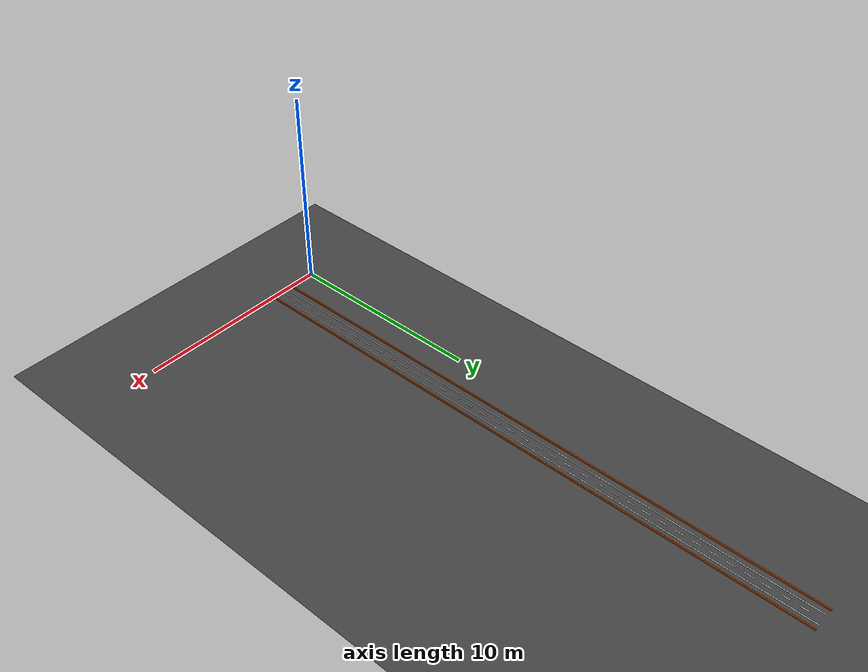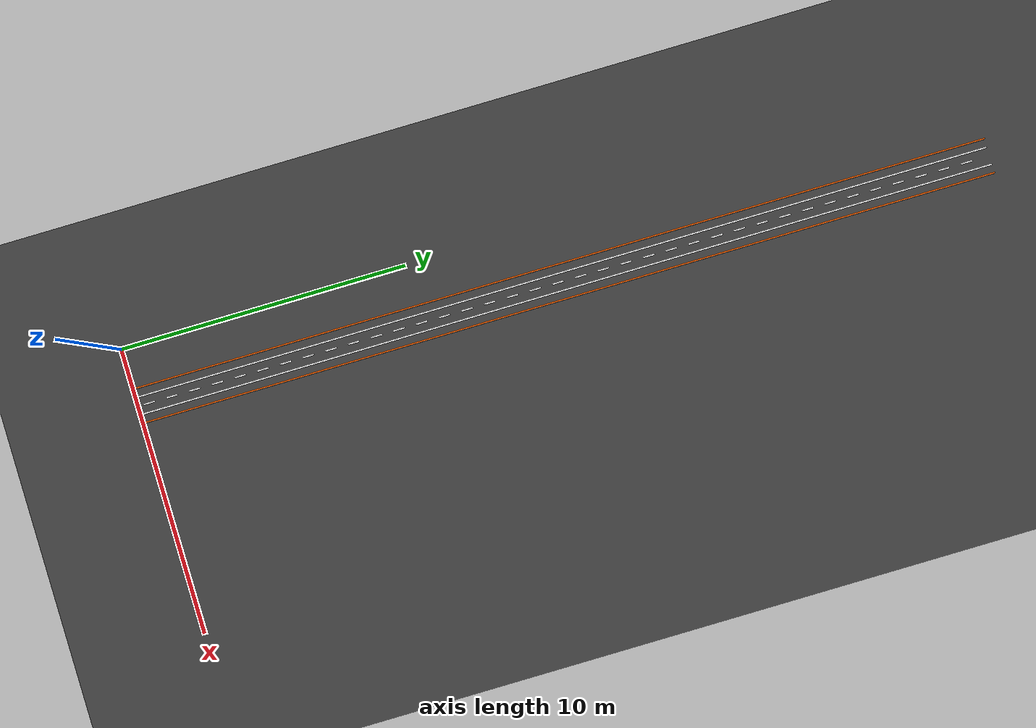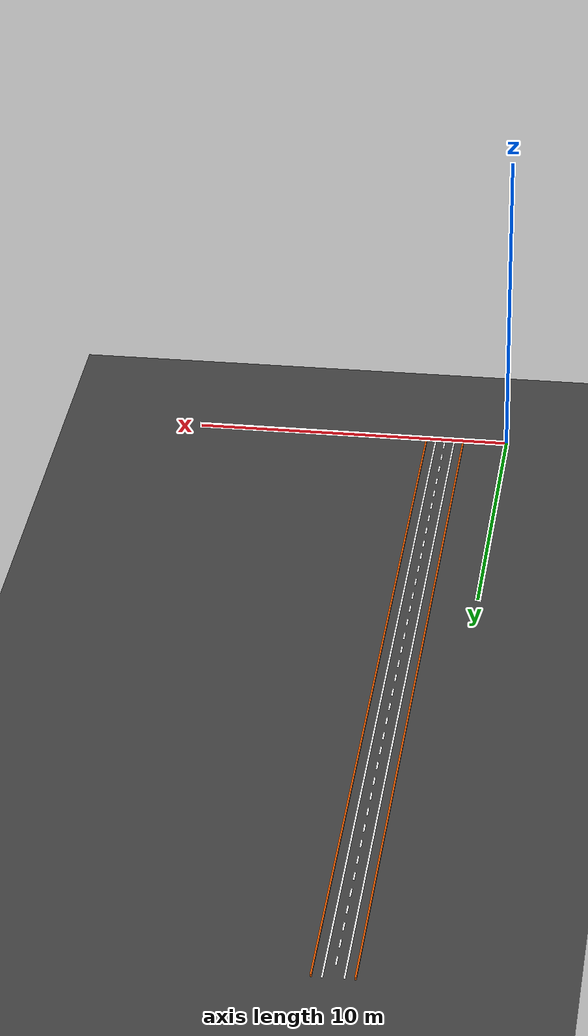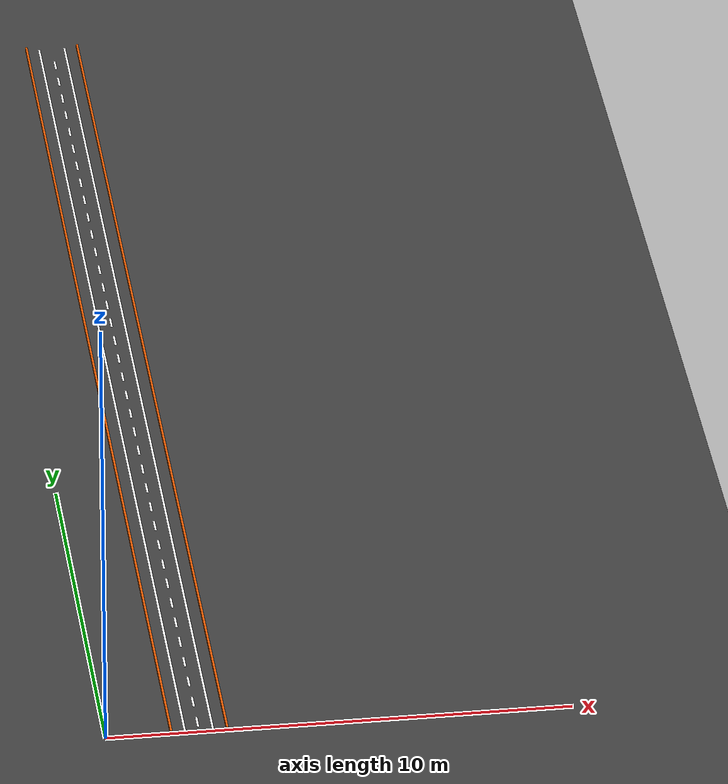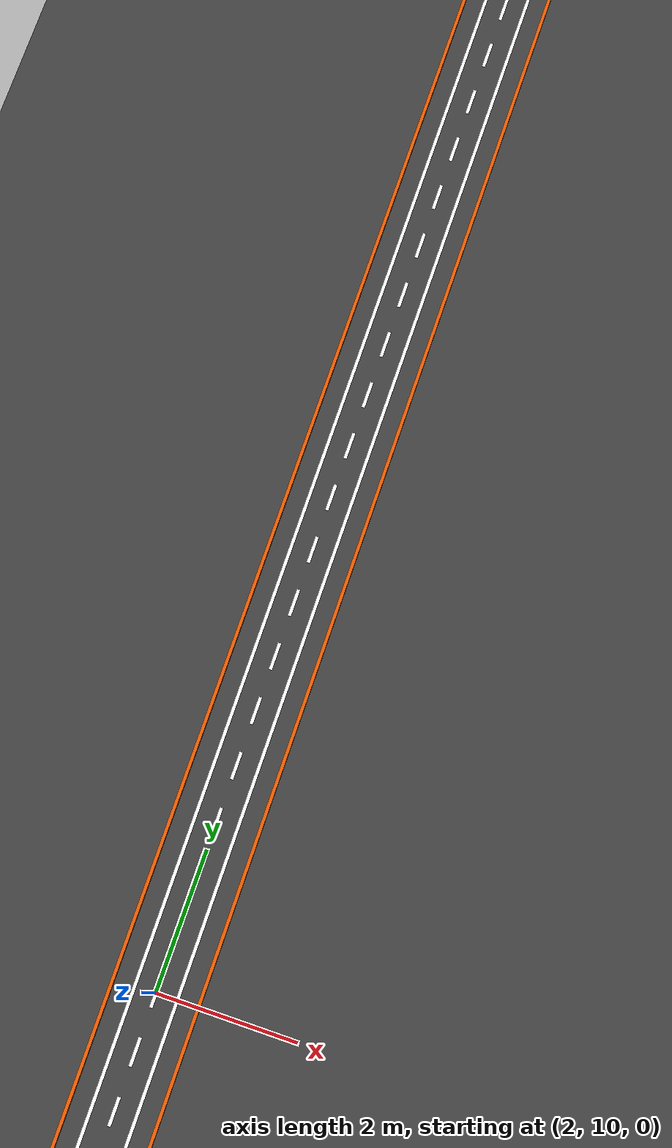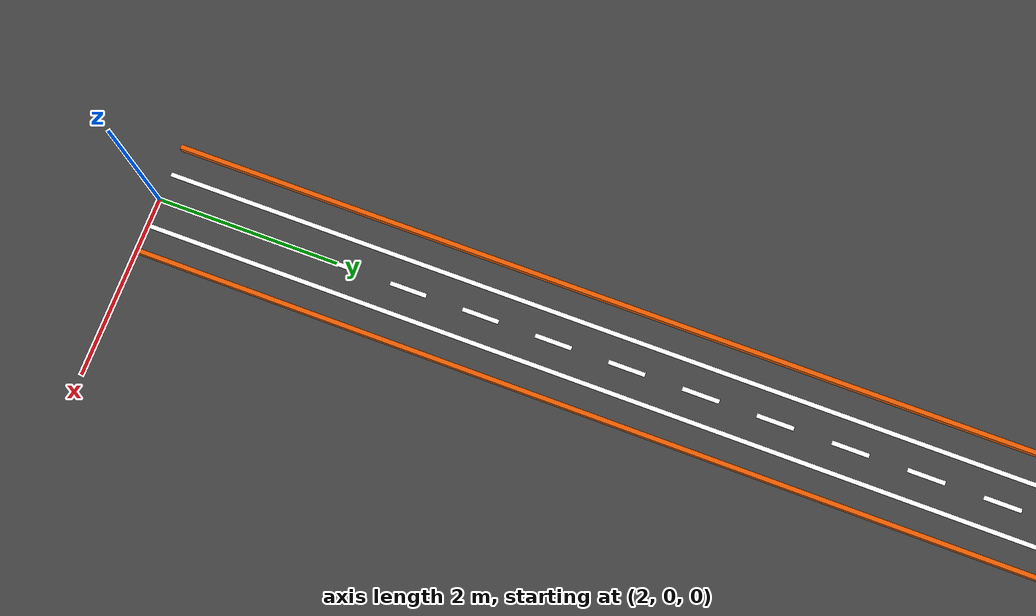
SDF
<?xml version="1.0" ?>
<sdf version="1.6">
  <world name="qcar_straight">

    <physics name="1ms" type="ignored">
      <max_step_size>0.001</max_step_size>
      <real_time_factor>1.0</real_time_factor>
    </physics>

    <plugin filename="ignition-gazebo-physics-system"        name="gz::sim::systems::Physics" />
    <plugin filename="ignition-gazebo-scene-broadcaster-system" name="gz::sim::systems::SceneBroadcaster" />
    <plugin filename="ignition-gazebo-user-commands-system"  name="gz::sim::systems::UserCommands" />
    <plugin filename="ignition-gazebo-sensors-system"        name="gz::sim::systems::Sensors">
      <render_engine>ogre2</render_engine>
    </plugin>
    <plugin filename="ignition-gazebo-imu-system"            name="gz::sim::systems::Imu" />
    <plugin filename="ignition-gazebo-contact-system"        name="gz::sim::systems::Contact" />

    <light type="directional" name="sun">
      <cast_shadows>true</cast_shadows>
      <pose>0 0 10 0 0 0</pose>
      <diffuse>0.8 0.8 0.8 1</diffuse>
      <specular>0.2 0.2 0.2 1</specular>
      <attenuation><range>1000</range><constant>0.9</constant><linear>0.01</linear><quadratic>0.001</quadratic></attenuation>
      <direction>-0.5 0.1 -0.9</direction>
    </light>

    <model name="ground_plane">
      <static>true</static>
      <link name="link">
        <collision name="c"><geometry><plane><normal>0 0 1</normal><size>100 100</size></plane></geometry></collision>
        <visual name="v">
          <geometry><plane><normal>0 0 1</normal><size>100 100</size></plane></geometry>
          <material>
            <ambient>0.25 0.25 0.25 1</ambient>
            <diffuse>0.25 0.25 0.25 1</diffuse>
            <specular>0.05 0.05 0.05 1</specular>
          </material>
        </visual>
      </link>
    </model>

    <!-- Left  boundary (continuous white) at X=1.7 -->
    <model name="left_line"><static>true</static>
      <pose>1.7 15.0000 0.0010 0 0 0</pose>
      <link name="link"><visual name="v">
        <geometry><box><size>0.05 30.0000 0.002</size></box></geometry>
        <material><ambient>1 1 1 1</ambient><diffuse>1 1 1 1</diffuse></material>
      </visual></link>
    </model>

    <!-- Right boundary (continuous white) at X=2.3 -->
    <model name="right_line"><static>true</static>
      <pose>2.3 15.0000 0.0010 0 0 0</pose>
      <link name="link"><visual name="v">
        <geometry><box><size>0.05 30.0000 0.002</size></box></geometry>
        <material><ambient>1 1 1 1</ambient><diffuse>1 1 1 1</diffuse></material>
      </visual></link>
    </model>

    <!-- Outer orange "walls" (low, just for visual reference, no collision) -->
    <model name="wall_left_outer"><static>true</static>
      <pose>1.4 15.0000 0.0400 0 0 0</pose>
      <link name="link"><visual name="v">
        <geometry><box><size>0.05 30.0000 0.08</size></box></geometry>
        <material><ambient>0.9 0.35 0 1</ambient><diffuse>0.9 0.35 0 1</diffuse></material>
      </visual></link>
    </model>
    <model name="wall_right_outer"><static>true</static>
      <pose>2.6 15.0000 0.0400 0 0 0</pose>
      <link name="link"><visual name="v">
        <geometry><box><size>0.05 30.0000 0.08</size></box></geometry>
        <material><ambient>0.9 0.35 0 1</ambient><diffuse>0.9 0.35 0 1</diffuse></material>
      </visual></link>
    </model>

    <!-- Centre dashes (longitudinal, real-road style) -->
    <model name="centre_dash_00"><static>true</static>
      <pose>2.0000 0.4000 0.0015 0 0 0</pose>
      <link name="link"><visual name="v">
        <geometry><box><size>0.05 0.4000 0.002</size></box></geometry>
        <material><ambient>1 1 1 1</ambient><diffuse>1 1 1 1</diffuse></material>
      </visual></link>
    </model>
    <model name="centre_dash_01"><static>true</static>
      <pose>2.0000 1.2000 0.0015 0 0 0</pose>
      <link name="link"><visual name="v">
        <geometry><box><size>0.05 0.4000 0.002</size></box></geometry>
        <material><ambient>1 1 1 1</ambient><diffuse>1 1 1 1</diffuse></material>
      </visual></link>
    </model>
    <model name="centre_dash_02"><static>true</static>
      <pose>2.0000 2.0000 0.0015 0 0 0</pose>
      <link name="link"><visual name="v">
        <geometry><box><size>0.05 0.4000 0.002</size></box></geometry>
        <material><ambient>1 1 1 1</ambient><diffuse>1 1 1 1</diffuse></material>
      </visual></link>
    </model>
    <model name="centre_dash_03"><static>true</static>
      <pose>2.0000 2.8000 0.0015 0 0 0</pose>
      <link name="link"><visual name="v">
        <geometry><box><size>0.05 0.4000 0.002</size></box></geometry>
        <material><ambient>1 1 1 1</ambient><diffuse>1 1 1 1</diffuse></material>
      </visual></link>
    </model>
    <model name="centre_dash_04"><static>true</static>
      <pose>2.0000 3.6000 0.0015 0 0 0</pose>
      <link name="link"><visual name="v">
        <geometry><box><size>0.05 0.4000 0.002</size></box></geometry>
        <material><ambient>1 1 1 1</ambient><diffuse>1 1 1 1</diffuse></material>
      </visual></link>
    </model>
    <model name="centre_dash_05"><static>true</static>
      <pose>2.0000 4.4000 0.0015 0 0 0</pose>
      <link name="link"><visual name="v">
        <geometry><box><size>0.05 0.4000 0.002</size></box></geometry>
        <material><ambient>1 1 1 1</ambient><diffuse>1 1 1 1</diffuse></material>
      </visual></link>
    </model>
    <model name="centre_dash_06"><static>true</static>
      <pose>2.0000 5.2000 0.0015 0 0 0</pose>
      <link name="link"><visual name="v">
        <geometry><box><size>0.05 0.4000 0.002</size></box></geometry>
        <material><ambient>1 1 1 1</ambient><diffuse>1 1 1 1</diffuse></material>
      </visual></link>
    </model>
    <model name="centre_dash_07"><static>true</static>
      <pose>2.0000 6.0000 0.0015 0 0 0</pose>
      <link name="link"><visual name="v">
        <geometry><box><size>0.05 0.4000 0.002</size></box></geometry>
        <material><ambient>1 1 1 1</ambient><diffuse>1 1 1 1</diffuse></material>
      </visual></link>
    </model>
    <model name="centre_dash_08"><static>true</static>
      <pose>2.0000 6.8000 0.0015 0 0 0</pose>
      <link name="link"><visual name="v">
        <geometry><box><size>0.05 0.4000 0.002</size></box></geometry>
        <material><ambient>1 1 1 1</ambient><diffuse>1 1 1 1</diffuse></material>
      </visual></link>
    </model>
    <model name="centre_dash_09"><static>true</static>
      <pose>2.0000 7.6000 0.0015 0 0 0</pose>
      <link name="link"><visual name="v">
        <geometry><box><size>0.05 0.4000 0.002</size></box></geometry>
        <material><ambient>1 1 1 1</ambient><diffuse>1 1 1 1</diffuse></material>
      </visual></link>
    </model>
    <model name="centre_dash_10"><static>true</static>
      <pose>2.0000 8.4000 0.0015 0 0 0</pose>
      <link name="link"><visual name="v">
        <geometry><box><size>0.05 0.4000 0.002</size></box></geometry>
        <material><ambient>1 1 1 1</ambient><diffuse>1 1 1 1</diffuse></material>
      </visual></link>
    </model>
    <model name="centre_dash_11"><static>true</static>
      <pose>2.0000 9.2000 0.0015 0 0 0</pose>
      <link name="link"><visual name="v">
        <geometry><box><size>0.05 0.4000 0.002</size></box></geometry>
        <material><ambient>1 1 1 1</ambient><diffuse>1 1 1 1</diffuse></material>
      </visual></link>
    </model>
    <model name="centre_dash_12"><static>true</static>
      <pose>2.0000 10.0000 0.0015 0 0 0</pose>
      <link name="link"><visual name="v">
        <geometry><box><size>0.05 0.4000 0.002</size></box></geometry>
        <material><ambient>1 1 1 1</ambient><diffuse>1 1 1 1</diffuse></material>
      </visual></link>
    </model>
    <model name="centre_dash_13"><static>true</static>
      <pose>2.0000 10.8000 0.0015 0 0 0</pose>
      <link name="link"><visual name="v">
        <geometry><box><size>0.05 0.4000 0.002</size></box></geometry>
        <material><ambient>1 1 1 1</ambient><diffuse>1 1 1 1</diffuse></material>
      </visual></link>
    </model>
    <model name="centre_dash_14"><static>true</static>
      <pose>2.0000 11.6000 0.0015 0 0 0</pose>
      <link name="link"><visual name="v">
        <geometry><box><size>0.05 0.4000 0.002</size></box></geometry>
        <material><ambient>1 1 1 1</ambient><diffuse>1 1 1 1</diffuse></material>
      </visual></link>
    </model>
    <model name="centre_dash_15"><static>true</static>
      <pose>2.0000 12.4000 0.0015 0 0 0</pose>
      <link name="link"><visual name="v">
        <geometry><box><size>0.05 0.4000 0.002</size></box></geometry>
        <material><ambient>1 1 1 1</ambient><diffuse>1 1 1 1</diffuse></material>
      </visual></link>
    </model>
    <model name="centre_dash_16"><static>true</static>
      <pose>2.0000 13.2000 0.0015 0 0 0</pose>
      <link name="link"><visual name="v">
        <geometry><box><size>0.05 0.4000 0.002</size></box></geometry>
        <material><ambient>1 1 1 1</ambient><diffuse>1 1 1 1</diffuse></material>
      </visual></link>
    </model>
    <model name="centre_dash_17"><static>true</static>
      <pose>2.0000 14.0000 0.0015 0 0 0</pose>
      <link name="link"><visual name="v">
        <geometry><box><size>0.05 0.4000 0.002</size></box></geometry>
        <material><ambient>1 1 1 1</ambient><diffuse>1 1 1 1</diffuse></material>
      </visual></link>
    </model>
    <model name="centre_dash_18"><static>true</static>
      <pose>2.0000 14.8000 0.0015 0 0 0</pose>
      <link name="link"><visual name="v">
        <geometry><box><size>0.05 0.4000 0.002</size></box></geometry>
        <material><ambient>1 1 1 1</ambient><diffuse>1 1 1 1</diffuse></material>
      </visual></link>
    </model>
    <model name="centre_dash_19"><static>true</static>
      <pose>2.0000 15.6000 0.0015 0 0 0</pose>
      <link name="link"><visual name="v">
        <geometry><box><size>0.05 0.4000 0.002</size></box></geometry>
        <material><ambient>1 1 1 1</ambient><diffuse>1 1 1 1</diffuse></material>
      </visual></link>
    </model>
    <model name="centre_dash_20"><static>true</static>
      <pose>2.0000 16.4000 0.0015 0 0 0</pose>
      <link name="link"><visual name="v">
        <geometry><box><size>0.05 0.4000 0.002</size></box></geometry>
        <material><ambient>1 1 1 1</ambient><diffuse>1 1 1 1</diffuse></material>
      </visual></link>
    </model>
    <model name="centre_dash_21"><static>true</static>
      <pose>2.0000 17.2000 0.0015 0 0 0</pose>
      <link name="link"><visual name="v">
        <geometry><box><size>0.05 0.4000 0.002</size></box></geometry>
        <material><ambient>1 1 1 1</ambient><diffuse>1 1 1 1</diffuse></material>
      </visual></link>
    </model>
    <model name="centre_dash_22"><static>true</static>
      <pose>2.0000 18.0000 0.0015 0 0 0</pose>
      <link name="link"><visual name="v">
        <geometry><box><size>0.05 0.4000 0.002</size></box></geometry>
        <material><ambient>1 1 1 1</ambient><diffuse>1 1 1 1</diffuse></material>
      </visual></link>
    </model>
    <model name="centre_dash_23"><static>true</static>
      <pose>2.0000 18.8000 0.0015 0 0 0</pose>
      <link name="link"><visual name="v">
        <geometry><box><size>0.05 0.4000 0.002</size></box></geometry>
        <material><ambient>1 1 1 1</ambient><diffuse>1 1 1 1</diffuse></material>
      </visual></link>
    </model>
    <model name="centre_dash_24"><static>true</static>
      <pose>2.0000 19.6000 0.0015 0 0 0</pose>
      <link name="link"><visual name="v">
        <geometry><box><size>0.05 0.4000 0.002</size></box></geometry>
        <material><ambient>1 1 1 1</ambient><diffuse>1 1 1 1</diffuse></material>
      </visual></link>
    </model>
    <model name="centre_dash_25"><static>true</static>
      <pose>2.0000 20.4000 0.0015 0 0 0</pose>
      <link name="link"><visual name="v">
        <geometry><box><size>0.05 0.4000 0.002</size></box></geometry>
        <material><ambient>1 1 1 1</ambient><diffuse>1 1 1 1</diffuse></material>
      </visual></link>
    </model>
    <model name="centre_dash_26"><static>true</static>
      <pose>2.0000 21.2000 0.0015 0 0 0</pose>
      <link name="link"><visual name="v">
        <geometry><box><size>0.05 0.4000 0.002</size></box></geometry>
        <material><ambient>1 1 1 1</ambient><diffuse>1 1 1 1</diffuse></material>
      </visual></link>
    </model>
    <model name="centre_dash_27"><static>true</static>
      <pose>2.0000 22.0000 0.0015 0 0 0</pose>
      <link name="link"><visual name="v">
        <geometry><box><size>0.05 0.4000 0.002</size></box></geometry>
        <material><ambient>1 1 1 1</ambient><diffuse>1 1 1 1</diffuse></material>
      </visual></link>
    </model>
    <model name="centre_dash_28"><static>true</static>
      <pose>2.0000 22.8000 0.0015 0 0 0</pose>
      <link name="link"><visual name="v">
        <geometry><box><size>0.05 0.4000 0.002</size></box></geometry>
        <material><ambient>1 1 1 1</ambient><diffuse>1 1 1 1</diffuse></material>
      </visual></link>
    </model>
    <model name="centre_dash_29"><static>true</static>
      <pose>2.0000 23.6000 0.0015 0 0 0</pose>
      <link name="link"><visual name="v">
        <geometry><box><size>0.05 0.4000 0.002</size></box></geometry>
        <material><ambient>1 1 1 1</ambient><diffuse>1 1 1 1</diffuse></material>
      </visual></link>
    </model>
    <model name="centre_dash_30"><static>true</static>
      <pose>2.0000 24.4000 0.0015 0 0 0</pose>
      <link name="link"><visual name="v">
        <geometry><box><size>0.05 0.4000 0.002</size></box></geometry>
        <material><ambient>1 1 1 1</ambient><diffuse>1 1 1 1</diffuse></material>
      </visual></link>
    </model>
    <model name="centre_dash_31"><static>true</static>
      <pose>2.0000 25.2000 0.0015 0 0 0</pose>
      <link name="link"><visual name="v">
        <geometry><box><size>0.05 0.4000 0.002</size></box></geometry>
        <material><ambient>1 1 1 1</ambient><diffuse>1 1 1 1</diffuse></material>
      </visual></link>
    </model>
    <model name="centre_dash_32"><static>true</static>
      <pose>2.0000 26.0000 0.0015 0 0 0</pose>
      <link name="link"><visual name="v">
        <geometry><box><size>0.05 0.4000 0.002</size></box></geometry>
        <material><ambient>1 1 1 1</ambient><diffuse>1 1 1 1</diffuse></material>
      </visual></link>
    </model>
    <model name="centre_dash_33"><static>true</static>
      <pose>2.0000 26.8000 0.0015 0 0 0</pose>
      <link name="link"><visual name="v">
        <geometry><box><size>0.05 0.4000 0.002</size></box></geometry>
        <material><ambient>1 1 1 1</ambient><diffuse>1 1 1 1</diffuse></material>
      </visual></link>
    </model>
    <model name="centre_dash_34"><static>true</static>
      <pose>2.0000 27.6000 0.0015 0 0 0</pose>
      <link name="link"><visual name="v">
        <geometry><box><size>0.05 0.4000 0.002</size></box></geometry>
        <material><ambient>1 1 1 1</ambient><diffuse>1 1 1 1</diffuse></material>
      </visual></link>
    </model>
    <model name="centre_dash_35"><static>true</static>
      <pose>2.0000 28.4000 0.0015 0 0 0</pose>
      <link name="link"><visual name="v">
        <geometry><box><size>0.05 0.4000 0.002</size></box></geometry>
        <material><ambient>1 1 1 1</ambient><diffuse>1 1 1 1</diffuse></material>
      </visual></link>
    </model>
    <model name="centre_dash_36"><static>true</static>
      <pose>2.0000 29.2000 0.0015 0 0 0</pose>
      <link name="link"><visual name="v">
        <geometry><box><size>0.05 0.4000 0.002</size></box></geometry>
        <material><ambient>1 1 1 1</ambient><diffuse>1 1 1 1</diffuse></material>
      </visual></link>
    </model>

  </world>
</sdf>
